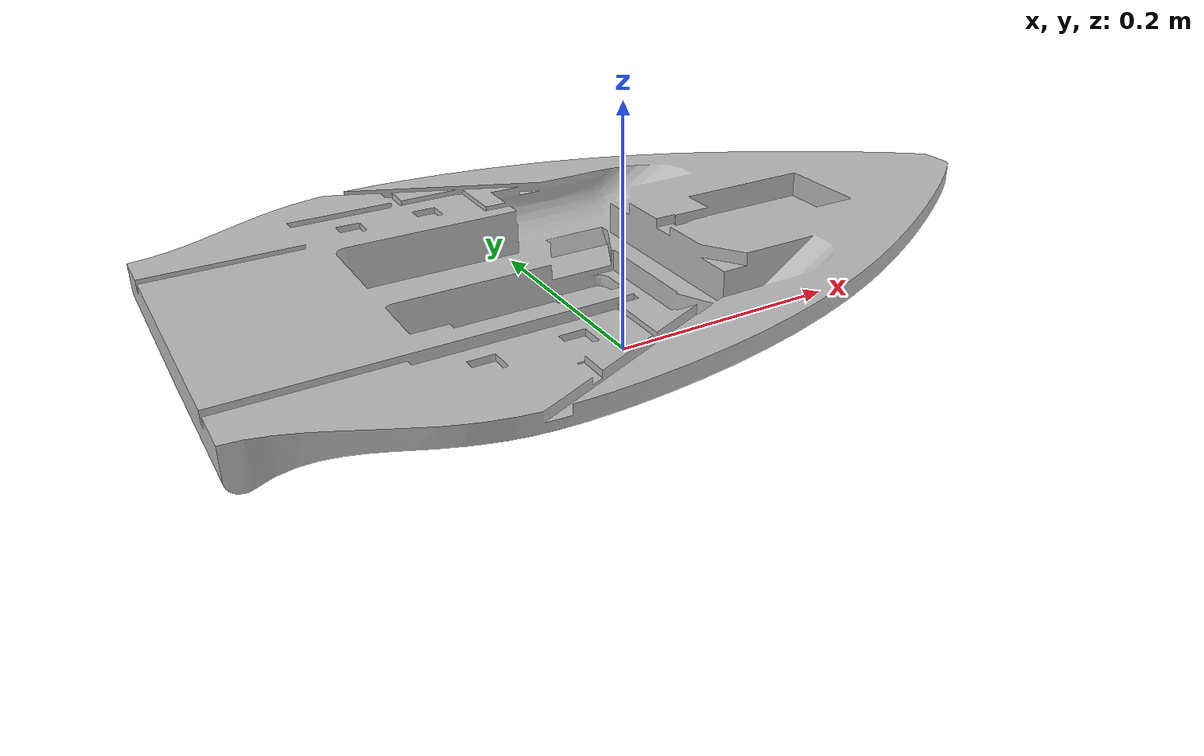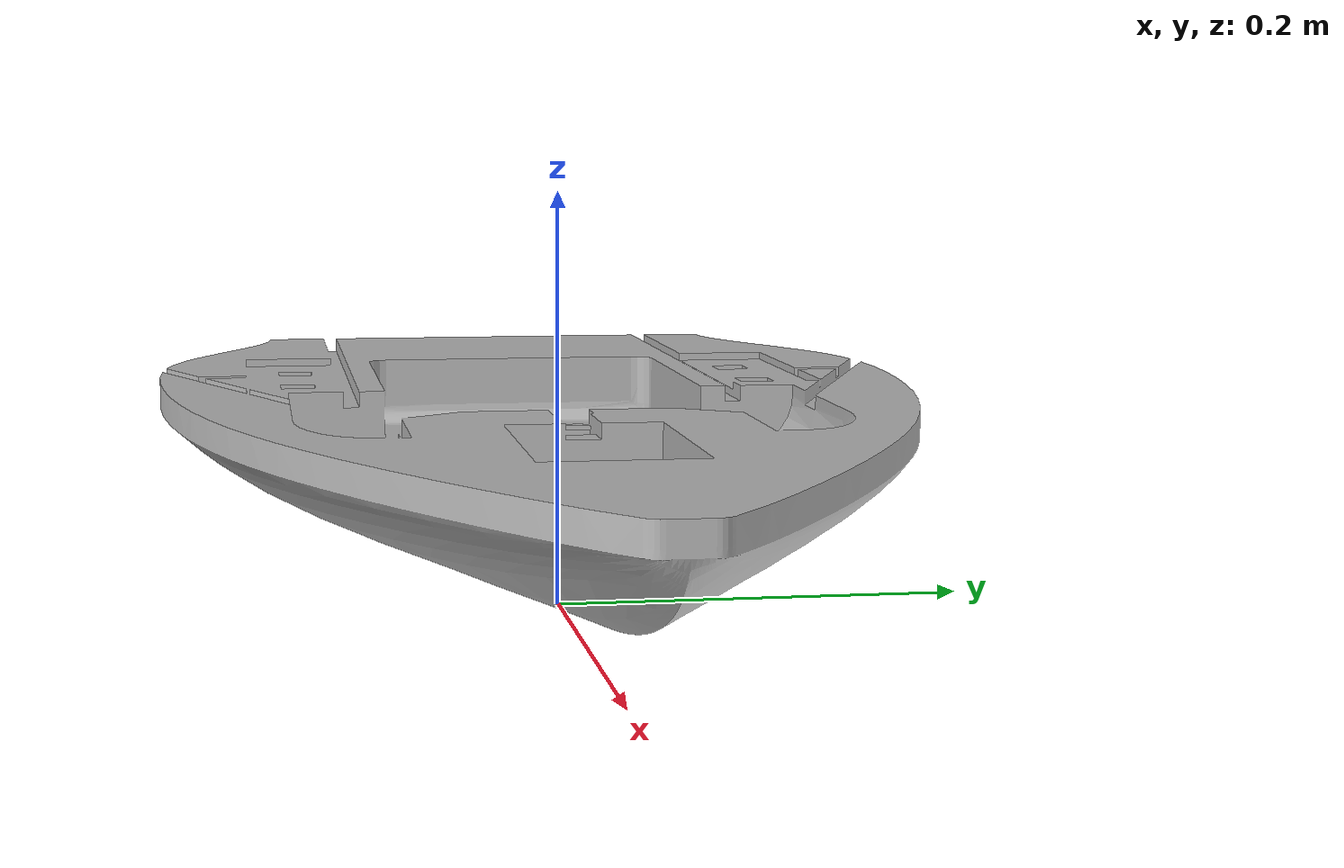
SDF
<?xml version='1.0'?>
<sdf version='1.5'>

  <model name='surfacevehicle'>
    <pose>0 0 0 0 0 0</pose>
    <link name='body'>

    <sensor type="gps" name="gps"> <!-- See http://sdformat.org/spec?ver=1.6&elem=sensor -->
    <plugin name="gpsplugin" filename="libgps.so"/>
      <gps>
        <position_sensing>
          <horizontal>
            <noise type="none">
            </noise>
          </horizontal>
          <vertical>
            <noise type="none">
            </noise>
          </vertical>
        </position_sensing>
        <velocity_sensing>
          <horizontal>
            <noise type="none">
            </noise>
          </horizontal>
          <vertical>
            <noise type="none">
            </noise>
          </vertical>
        </velocity_sensing>
      </gps>
      <always_on>1</always_on>
      <update_rate>30</update_rate>
      <visualize>true</visualize>
    </sensor>

      <pose>0 0 0 0 0 0</pose>
      <inertial>
        <!-- IF WE COULD SIMULATE ADDED MASS IN GAZEBO, THEN THE BELOW MASS MATRIX WOULD BE SET AS MASS OF RIGID BODY (MRB) + THE ADDED MASS (MA)-->
        <mass>3.0</mass>
        <!-- center of mass -->
        <pose> -0.037 0 0.067  0 0 0</pose> <!-- center of mass -0.037->-0.04 -->
        <inertia>
          <!-- scaling factor 1-->
          <ixx> 0.0245</ixx>
          <ixy>0.0</ixy>
          <ixz>0.0</ixz>
          <iyy>0.0788</iyy>
          <iyz>0.0</iyz>
          <izz>0.1005</izz>

        </inertia>
      </inertial>

      <visual name='body_visual'>
        <geometry>
          <mesh>
            <uri>model://surfacevehicle/meshes/proto7_meters.dae</uri>
          </mesh>
        </geometry>
      </visual>
      <collision name='body_collision'>
        <geometry>
          <mesh>
            <uri>model://surfacevehicle/meshes/proto7_meters.dae</uri>
          </mesh>
        </geometry>
        <surface>
          <contact>
            <collide_bitmask>0x01</collide_bitmask>
          </contact>
        </surface>
      </collision>
    </link>

    <allow_auto_disable>1</allow_auto_disable>

    <plugin name="asvdynamics" filename="libasvdynamics.so">
      <fluid_density>1000.0</fluid_density>
      <water_level>10.0</water_level>
      <boat_volume>0.006994</boat_volume>
      <boat_boundingbox_volume>0.0252058</boat_boundingbox_volume>
      <boat_boundingbox_dimensions>0.653 0.386 0.10</boat_boundingbox_dimensions>
      <boat_center_of_volume>-0.0485 0.0 0.07</boat_center_of_volume>
      <damping_force_linear_coefficients>10.0 10.0 10.0</damping_force_linear_coefficients>
      <damping_torque_linear_coefficients>10.0 10.0 10.0</damping_torque_linear_coefficients>
      <left_propeller_thrust>1.0</left_propeller_thrust>
      <right_propeller_thrust>12.0</right_propeller_thrust>
    </plugin>

  </model>
</sdf>
